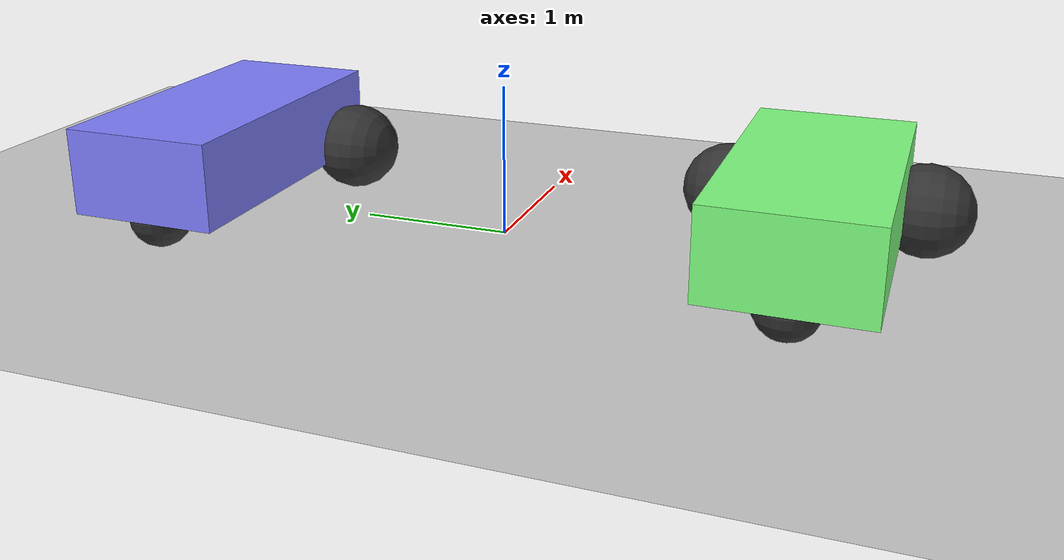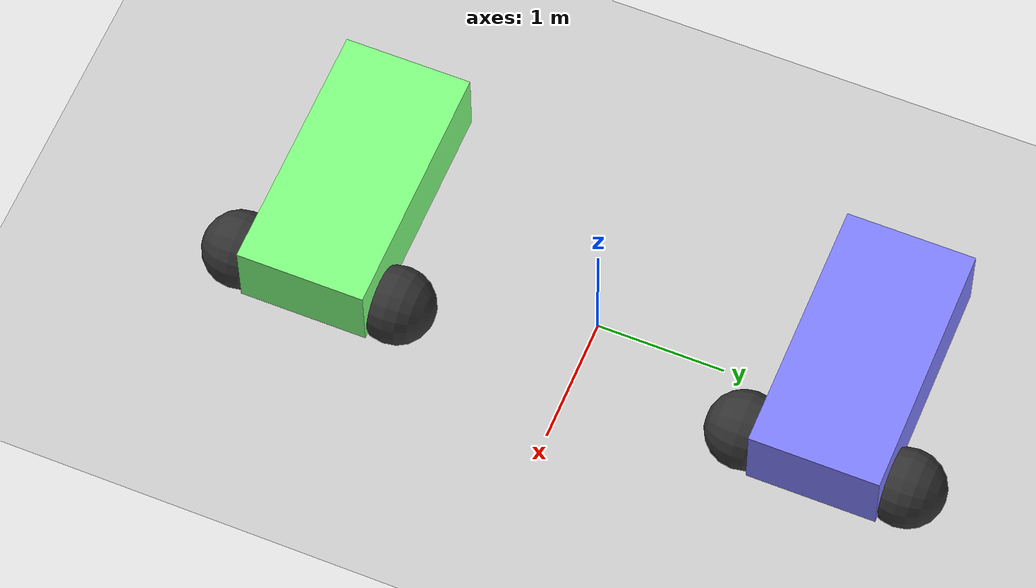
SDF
<sdf version='1.10'>
  <world name='diff_drive'>
    <physics name='1ms' type='ignored'>
      <max_step_size>0.001</max_step_size>
      <real_time_factor>1</real_time_factor>
      <real_time_update_rate>1000</real_time_update_rate>
    </physics>
    <plugin name='gz::sim::systems::Physics' filename='gz-sim-physics-system'/>
    <plugin name='gz::sim::systems::UserCommands' filename='gz-sim-user-commands-system'/>
    <plugin name='gz::sim::systems::SceneBroadcaster' filename='gz-sim-scene-broadcaster-system'/>
    <gravity>0 0 -9.8000000000000007</gravity>
    <magnetic_field>5.5644999999999998e-06 2.2875799999999999e-05 -4.2388400000000002e-05</magnetic_field>
    <atmosphere type='adiabatic'/>
    <scene>
      <ambient>0.400000006 0.400000006 0.400000006 1</ambient>
      <background>0.699999988 0.699999988 0.699999988 1</background>
      <shadows>true</shadows>
    </scene>
    <model name='ground_plane'>
      <static>true</static>
      <link name='link'>
        <collision name='collision'>
          <geometry>
            <plane>
              <normal>0 0 1</normal>
              <size>100 100</size>
            </plane>
          </geometry>
          <surface>
            <friction>
              <ode/>
            </friction>
            <bounce/>
            <contact/>
          </surface>
        </collision>
        <visual name='visual'>
          <geometry>
            <plane>
              <normal>0 0 1</normal>
              <size>100 100</size>
            </plane>
          </geometry>
          <material>
            <ambient>0.800000012 0.800000012 0.800000012 1</ambient>
            <diffuse>0.800000012 0.800000012 0.800000012 1</diffuse>
            <specular>0.800000012 0.800000012 0.800000012 1</specular>
          </material>
        </visual>
        <pose>0 0 0 0 0 0</pose>
        <inertial>
          <pose>0 0 0 0 0 0</pose>
          <mass>1</mass>
          <inertia>
            <ixx>1</ixx>
            <ixy>0</ixy>
            <ixz>0</ixz>
            <iyy>1</iyy>
            <iyz>0</iyz>
            <izz>1</izz>
          </inertia>
        </inertial>
        <enable_wind>false</enable_wind>
      </link>
      <pose>0 0 0 0 0 0</pose>
      <self_collide>false</self_collide>
    </model>
    <model name='vehicle_blue'>
      <pose>-3.5534353204358382e-07 2.0000000000003921 0.32499938652317373 -8.7532269763164841e-13 -1.0933334433716686e-06 -7.5542123009919984e-19</pose>
      <link name='chassis'>
        <pose>-0.15142700000000001 0 0.17499999999999999 0 0 0</pose>
        <inertial>
          <mass>1.14395</mass>
          <inertia>
            <ixx>0.126164</ixx>
            <ixy>0</ixy>
            <ixz>0</ixz>
            <iyy>0.41651899999999997</iyy>
            <iyz>0</iyz>
            <izz>0.481014</izz>
          </inertia>
          <pose>0 0 0 0 0 0</pose>
        </inertial>
        <visual name='visual'>
          <geometry>
            <box>
              <size>2.0114200000000002 1 0.56872599999999995</size>
            </box>
          </geometry>
          <material>
            <ambient>0.5 0.5 1 1</ambient>
            <diffuse>0.5 0.5 1 1</diffuse>
            <specular>0 0 1 1</specular>
          </material>
        </visual>
        <collision name='collision'>
          <geometry>
            <box>
              <size>2.0114200000000002 1 0.56872599999999995</size>
            </box>
          </geometry>
          <surface>
            <friction>
              <ode/>
            </friction>
            <bounce/>
            <contact/>
          </surface>
        </collision>
        <enable_wind>false</enable_wind>
      </link>
      <link name='left_wheel'>
        <pose>0.55428299999999986 0.62502900000000006 -0.025000000000000078 -1.5706999999999995 -4.5917136958347845e-17 -4.4983243231618341e-21</pose>
        <inertial>
          <mass>2</mass>
          <inertia>
            <ixx>0.14583299999999999</ixx>
            <ixy>0</ixy>
            <ixz>0</ixz>
            <iyy>0.14583299999999999</iyy>
            <iyz>0</iyz>
            <izz>0.125</izz>
          </inertia>
          <pose>0 0 0 0 0 0</pose>
        </inertial>
        <visual name='visual'>
          <geometry>
            <sphere>
              <radius>0.29999999999999999</radius>
            </sphere>
          </geometry>
          <material>
            <ambient>0.200000003 0.200000003 0.200000003 1</ambient>
            <diffuse>0.200000003 0.200000003 0.200000003 1</diffuse>
            <specular>0.200000003 0.200000003 0.200000003 1</specular>
          </material>
        </visual>
        <collision name='collision'>
          <geometry>
            <sphere>
              <radius>0.29999999999999999</radius>
            </sphere>
          </geometry>
          <surface>
            <friction>
              <ode>
                <mu>1</mu>
                <mu2>1</mu2>
                <slip1>0.035000000000000003</slip1>
                <slip2>0</slip2>
                <fdir1>0 0 1</fdir1>
              </ode>
              <bullet>
                <friction>1</friction>
                <friction2>1</friction2>
                <rolling_friction>0.10000000000000001</rolling_friction>
                <spinning_friction>0.1</spinning_friction>
              </bullet>
            </friction>
            <bounce/>
            <contact/>
          </surface>
        </collision>
        <enable_wind>false</enable_wind>
      </link>
      <link name='right_wheel'>
        <pose>0.55428199999999994 -0.62502899999999939 -0.025000000000000078 -1.5706999999999995 -4.5943789910286623e-17 -4.4996080198913545e-21</pose>
        <inertial>
          <mass>2</mass>
          <inertia>
            <ixx>0.14583299999999999</ixx>
            <ixy>0</ixy>
            <ixz>0</ixz>
            <iyy>0.14583299999999999</iyy>
            <iyz>0</iyz>
            <izz>0.125</izz>
          </inertia>
          <pose>0 0 0 0 0 0</pose>
        </inertial>
        <visual name='visual'>
          <geometry>
            <sphere>
              <radius>0.29999999999999999</radius>
            </sphere>
          </geometry>
          <material>
            <ambient>0.200000003 0.200000003 0.200000003 1</ambient>
            <diffuse>0.200000003 0.200000003 0.200000003 1</diffuse>
            <specular>0.200000003 0.200000003 0.200000003 1</specular>
          </material>
        </visual>
        <collision name='collision'>
          <geometry>
            <sphere>
              <radius>0.29999999999999999</radius>
            </sphere>
          </geometry>
          <surface>
            <friction>
              <ode>
                <mu>1</mu>
                <mu2>1</mu2>
                <slip1>0.035000000000000003</slip1>
                <slip2>0</slip2>
                <fdir1>0 0 1</fdir1>
              </ode>
              <bullet>
                <friction>1</friction>
                <friction2>1</friction2>
                <rolling_friction>0.10000000000000001</rolling_friction>
                <spinning_friction>0.1</spinning_friction>
              </bullet>
            </friction>
            <bounce/>
            <contact/>
          </surface>
        </collision>
        <enable_wind>false</enable_wind>
      </link>
      <link name='caster'>
        <pose>-0.95713790224647233 1.2878587085651816e-14 -0.1249992621046398 -3.1515729198389178e-12 5.8903080736177938e-06 -1.4379561714120133e-18</pose>
        <inertial>
          <mass>1</mass>
          <inertia>
            <ixx>0.10000000000000001</ixx>
            <ixy>0</ixy>
            <ixz>0</ixz>
            <iyy>0.10000000000000001</iyy>
            <iyz>0</iyz>
            <izz>0.10000000000000001</izz>
          </inertia>
          <pose>0 0 0 0 0 0</pose>
        </inertial>
        <visual name='visual'>
          <geometry>
            <sphere>
              <radius>0.20000000000000001</radius>
            </sphere>
          </geometry>
          <material>
            <ambient>0.200000003 0.200000003 0.200000003 1</ambient>
            <diffuse>0.200000003 0.200000003 0.200000003 1</diffuse>
            <specular>0.200000003 0.200000003 0.200000003 1</specular>
          </material>
        </visual>
        <collision name='collision'>
          <geometry>
            <sphere>
              <radius>0.20000000000000001</radius>
            </sphere>
          </geometry>
          <surface>
            <friction>
              <ode/>
            </friction>
            <bounce/>
            <contact/>
          </surface>
        </collision>
        <enable_wind>false</enable_wind>
      </link>
      <joint name='left_wheel_joint' type='revolute'>
        <parent>chassis</parent>
        <child>left_wheel</child>
        <axis>
          <xyz>0 0 1</xyz>
          <limit>
            <lower>-1.7976900000000001e+308</lower>
            <upper>1.7976900000000001e+308</upper>
            <effort>inf</effort>
            <velocity>inf</velocity>
            <stiffness>100000000</stiffness>
            <dissipation>1</dissipation>
          </limit>
          <dynamics>
            <spring_reference>0</spring_reference>
            <spring_stiffness>0</spring_stiffness>
            <damping>0</damping>
            <friction>0</friction>
          </dynamics>
        </axis>
        <pose>0 0 1.1102230246251565e-16 0 0 0</pose>
      </joint>
      <joint name='right_wheel_joint' type='revolute'>
        <parent>chassis</parent>
        <child>right_wheel</child>
        <axis>
          <xyz>0 0 1</xyz>
          <limit>
            <lower>-1.7976900000000001e+308</lower>
            <upper>1.7976900000000001e+308</upper>
            <effort>inf</effort>
            <velocity>inf</velocity>
            <stiffness>100000000</stiffness>
            <dissipation>1</dissipation>
          </limit>
          <dynamics>
            <spring_reference>0</spring_reference>
            <spring_stiffness>0</spring_stiffness>
            <damping>0</damping>
            <friction>0</friction>
          </dynamics>
        </axis>
        <pose>-1.1102230246251565e-16 0 0 0 0 0</pose>
      </joint>
      <joint name='caster_wheel' type='ball'>
        <parent>chassis</parent>
        <child>caster</child>
        <pose>0 0 0 0 0 0</pose>
      </joint>
      <plugin name='gz::sim::systems::DiffDrive' filename='gz-sim-diff-drive-system'>
        <left_joint>left_wheel_joint</left_joint>
        <right_joint>right_wheel_joint</right_joint>
        <wheel_separation>1.25</wheel_separation>
        <wheel_radius>0.3</wheel_radius>
        <odom_publish_frequency>1</odom_publish_frequency>
        <max_linear_acceleration>1</max_linear_acceleration>
        <min_linear_acceleration>-1</min_linear_acceleration>
        <max_angular_acceleration>2</max_angular_acceleration>
        <min_angular_acceleration>-2</min_angular_acceleration>
        <max_linear_velocity>0.5</max_linear_velocity>
        <min_linear_velocity>-0.5</min_linear_velocity>
        <max_angular_velocity>1</max_angular_velocity>
        <min_angular_velocity>-1</min_angular_velocity>
      </plugin>
      <static>false</static>
      <self_collide>false</self_collide>
    </model>
    <model name='vehicle_green'>
      <pose>-3.5534353204358382e-07 -1.9999999999996028 0.32499938652317373 -8.7532266116650304e-13 -1.0933334433716442e-06 -7.5609745047090164e-19</pose>
      <link name='chassis'>
        <pose>-0.15142700000000001 0 0.17499999999999999 0 0 0</pose>
        <inertial>
          <mass>1.14395</mass>
          <inertia>
            <ixx>0.126164</ixx>
            <ixy>0</ixy>
            <ixz>0</ixz>
            <iyy>0.41651899999999997</iyy>
            <iyz>0</iyz>
            <izz>0.481014</izz>
          </inertia>
          <pose>0 0 0 0 0 0</pose>
        </inertial>
        <visual name='visual'>
          <geometry>
            <box>
              <size>2.0114200000000002 1 0.56872599999999995</size>
            </box>
          </geometry>
          <material>
            <ambient>0.5 1 0.5 1</ambient>
            <diffuse>0.5 1 0.5 1</diffuse>
            <specular>0 1 0 1</specular>
          </material>
        </visual>
        <collision name='collision'>
          <geometry>
            <box>
              <size>2.0114200000000002 1 0.56872599999999995</size>
            </box>
          </geometry>
          <surface>
            <friction>
              <ode/>
            </friction>
            <bounce/>
            <contact/>
          </surface>
        </collision>
        <enable_wind>false</enable_wind>
      </link>
      <link name='left_wheel'>
        <pose>0.55428299999999986 0.62502899999999983 -0.025000000000000078 -1.5706999999999995 -4.5954870322133154e-17 -4.4228839943423966e-21</pose>
        <inertial>
          <mass>2</mass>
          <inertia>
            <ixx>0.14583299999999999</ixx>
            <ixy>0</ixy>
            <ixz>0</ixz>
            <iyy>0.14583299999999999</iyy>
            <iyz>0</iyz>
            <izz>0.125</izz>
          </inertia>
          <pose>0 0 0 0 0 0</pose>
        </inertial>
        <visual name='visual'>
          <geometry>
            <sphere>
              <radius>0.29999999999999999</radius>
            </sphere>
          </geometry>
          <material>
            <ambient>0.200000003 0.200000003 0.200000003 1</ambient>
            <diffuse>0.200000003 0.200000003 0.200000003 1</diffuse>
            <specular>0.200000003 0.200000003 0.200000003 1</specular>
          </material>
        </visual>
        <collision name='collision'>
          <geometry>
            <sphere>
              <radius>0.29999999999999999</radius>
            </sphere>
          </geometry>
          <surface>
            <friction>
              <ode>
                <mu>1</mu>
                <mu2>1</mu2>
                <slip1>0.035000000000000003</slip1>
                <slip2>0</slip2>
                <fdir1>0 0 1</fdir1>
              </ode>
              <bullet>
                <friction>1</friction>
                <friction2>1</friction2>
                <rolling_friction>0.10000000000000001</rolling_friction>
                <spinning_friction>0.1</spinning_friction>
              </bullet>
            </friction>
            <bounce/>
            <contact/>
          </surface>
        </collision>
        <enable_wind>false</enable_wind>
      </link>
      <link name='right_wheel'>
        <pose>0.55428199999999994 -0.6250290000000005 -0.025000000000000078 -1.5706999999999995 -4.5985341530434804e-17 -4.4992194339520349e-21</pose>
        <inertial>
          <mass>2</mass>
          <inertia>
            <ixx>0.14583299999999999</ixx>
            <ixy>0</ixy>
            <ixz>0</ixz>
            <iyy>0.14583299999999999</iyy>
            <iyz>0</iyz>
            <izz>0.125</izz>
          </inertia>
          <pose>0 0 0 0 0 0</pose>
        </inertial>
        <visual name='visual'>
          <geometry>
            <sphere>
              <radius>0.29999999999999999</radius>
            </sphere>
          </geometry>
          <material>
            <ambient>0.200000003 0.200000003 0.200000003 1</ambient>
            <diffuse>0.200000003 0.200000003 0.200000003 1</diffuse>
            <specular>0.200000003 0.200000003 0.200000003 1</specular>
          </material>
        </visual>
        <collision name='collision'>
          <geometry>
            <sphere>
              <radius>0.29999999999999999</radius>
            </sphere>
          </geometry>
          <surface>
            <friction>
              <ode>
                <mu>1</mu>
                <mu2>1</mu2>
                <slip1>0.035000000000000003</slip1>
                <slip2>0</slip2>
                <fdir1>0 0 1</fdir1>
              </ode>
              <bullet>
                <friction>1</friction>
                <friction2>1</friction2>
                <rolling_friction>0.10000000000000001</rolling_friction>
                <spinning_friction>0.1</spinning_friction>
              </bullet>
            </friction>
            <bounce/>
            <contact/>
          </surface>
        </collision>
        <enable_wind>false</enable_wind>
      </link>
      <link name='caster'>
        <pose>-0.95713790224647233 7.1054273576010019e-15 -0.1249992621046398 -3.1515695061907738e-12 5.8903080736177573e-06 -1.4377452488366366e-18</pose>
        <inertial>
          <mass>1</mass>
          <inertia>
            <ixx>0.10000000000000001</ixx>
            <ixy>0</ixy>
            <ixz>0</ixz>
            <iyy>0.10000000000000001</iyy>
            <iyz>0</iyz>
            <izz>0.10000000000000001</izz>
          </inertia>
          <pose>0 0 0 0 0 0</pose>
        </inertial>
        <visual name='visual'>
          <geometry>
            <sphere>
              <radius>0.20000000000000001</radius>
            </sphere>
          </geometry>
          <material>
            <ambient>0.200000003 0.200000003 0.200000003 1</ambient>
            <diffuse>0.200000003 0.200000003 0.200000003 1</diffuse>
            <specular>0.200000003 0.200000003 0.200000003 1</specular>
          </material>
        </visual>
        <collision name='collision'>
          <geometry>
            <sphere>
              <radius>0.20000000000000001</radius>
            </sphere>
          </geometry>
          <surface>
            <friction>
              <ode/>
            </friction>
            <bounce/>
            <contact/>
          </surface>
        </collision>
        <enable_wind>false</enable_wind>
      </link>
      <joint name='left_wheel_joint' type='revolute'>
        <parent>chassis</parent>
        <child>left_wheel</child>
        <axis>
          <xyz>0 0 1</xyz>
          <limit>
            <lower>-1.7976900000000001e+308</lower>
            <upper>1.7976900000000001e+308</upper>
            <effort>inf</effort>
            <velocity>inf</velocity>
            <stiffness>100000000</stiffness>
            <dissipation>1</dissipation>
          </limit>
          <dynamics>
            <spring_reference>0</spring_reference>
            <spring_stiffness>0</spring_stiffness>
            <damping>0</damping>
            <friction>0</friction>
          </dynamics>
        </axis>
        <pose>0 0 1.1102230246251565e-16 0 0 0</pose>
      </joint>
      <joint name='right_wheel_joint' type='revolute'>
        <parent>chassis</parent>
        <child>right_wheel</child>
        <axis>
          <xyz>0 0 1</xyz>
          <limit>
            <lower>-1.7976900000000001e+308</lower>
            <upper>1.7976900000000001e+308</upper>
            <effort>inf</effort>
            <velocity>inf</velocity>
            <stiffness>100000000</stiffness>
            <dissipation>1</dissipation>
          </limit>
          <dynamics>
            <spring_reference>0</spring_reference>
            <spring_stiffness>0</spring_stiffness>
            <damping>0</damping>
            <friction>0</friction>
          </dynamics>
        </axis>
        <pose>-1.1102230246251565e-16 0 0 0 0 0</pose>
      </joint>
      <joint name='caster_wheel' type='ball'>
        <parent>chassis</parent>
        <child>caster</child>
        <pose>0 0 0 0 0 0</pose>
      </joint>
      <plugin name='gz::sim::systems::DiffDrive' filename='gz-sim-diff-drive-system'>
        <left_joint>left_wheel_joint</left_joint>
        <right_joint>right_wheel_joint</right_joint>
        <wheel_separation>1.25</wheel_separation>
        <wheel_radius>0.3</wheel_radius>
        <max_linear_acceleration>1</max_linear_acceleration>
        <min_linear_acceleration>-1</min_linear_acceleration>
        <max_angular_acceleration>2</max_angular_acceleration>
        <min_angular_acceleration>-2</min_angular_acceleration>
        <max_linear_velocity>0.5</max_linear_velocity>
        <min_linear_velocity>-0.5</min_linear_velocity>
        <max_angular_velocity>1</max_angular_velocity>
        <min_angular_velocity>-1</min_angular_velocity>
      </plugin>
      <static>false</static>
      <self_collide>false</self_collide>
    </model>
    <light name='sun' type='directional'>
      <pose>0 0 10 0 0 0</pose>
      <cast_shadows>true</cast_shadows>
      <intensity>1</intensity>
      <direction>-0.5 0.10000000000000001 -0.90000000000000002</direction>
      <diffuse>1 1 1 1</diffuse>
      <specular>0.5 0.5 0.5 1</specular>
      <attenuation>
        <range>1000</range>
        <linear>0.01</linear>
        <constant>0.90000000000000002</constant>
        <quadratic>0.001</quadratic>
      </attenuation>
      <spot>
        <inner_angle>0</inner_angle>
        <outer_angle>0</outer_angle>
        <falloff>0</falloff>
      </spot>
    </light>
  </world>
</sdf>
